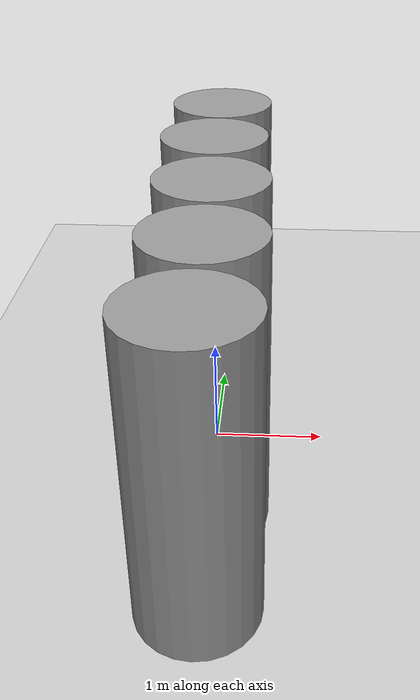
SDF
<sdf version="1.7">
 <world name="default">
  <light name="sun" type="directional">
   <pose>0 0 10 0 -0 0</pose>
   <diffuse>0.8 0.8 0.8 1</diffuse>
   <specular>0.2 0.2 0.2 1</specular>
   <attenuation>
    <range>1000</range>
    <constant>0.9</constant>
    <linear>0.01</linear>
    <quadratic>0.001</quadratic>
   </attenuation>
   <direction>-0.5 0.1 -0.9</direction>
   <spot><inner_angle>0</inner_angle><outer_angle>0</outer_angle><falloff>0</falloff></spot>
  </light>
  <model name="ground_plane">
   <static>1</static>
   <link name="link">
    <collision name="collision">
     <geometry><plane><normal>0 0 1</normal><size>100 100</size></plane></geometry>
     <surface>
      <contact><collide_bitmask>65535</collide_bitmask></contact>
      <friction><ode><mu>100</mu><mu2>50</mu2></ode></friction>
     </surface>
    </collision>
    <visual name="visual">
     <cast_shadows>0</cast_shadows>
     <geometry><plane><normal>0 0 1</normal><size>100 100</size></plane></geometry>
     <material>
      <script><uri>file://media/materials/scripts/gazebo.material</uri><name>Gazebo/Grey</name></script>
     </material>
    </visual>
   </link>
  </model>
  <gravity>0 0 -9.8</gravity>
  <magnetic_field>6e-06 2.3e-05 -4.2e-05</magnetic_field>
  <atmosphere type="adiabatic"/>
  <physics type="ode">
   <max_step_size>0.001</max_step_size>
   <real_time_factor>1</real_time_factor>
   <real_time_update_rate>1000</real_time_update_rate>
  </physics>
  <scene><ambient>0.4 0.4 0.4 1</ambient><background>0.7 0.7 0.7 1</background><shadows>1</shadows></scene>
  <spherical_coordinates>
   <surface_model>EARTH_WGS84</surface_model>
   <latitude_deg>0</latitude_deg>
   <longitude_deg>0</longitude_deg>
   <elevation>0</elevation>
   <heading_deg>0</heading_deg>
  </spherical_coordinates>
  <model name="unit_cylinder">
   <pose>2e-06 2e-06 1.32244 0 0 -3e-06</pose>
   <link name="link">
    <inertial>
     <mass>1</mass>
     <inertia><ixx>0.145833</ixx><ixy>0</ixy><ixz>0</ixz><iyy>0.145833</iyy><iyz>0</iyz><izz>0.125</izz></inertia>
    </inertial>
    <collision name="collision">
     <geometry><cylinder><radius>0.499999</radius><length>2.64489</length></cylinder></geometry>
    </collision>
    <visual name="visual">
     <geometry><cylinder><radius>0.499999</radius><length>2.64489</length></cylinder></geometry>
     <material>
      <script><name>Gazebo/Grey</name><uri>file://media/materials/scripts/gazebo.material</uri></script>
     </material>
    </visual>
   </link>
  </model>
  <model name="unit_cylinder_clone">
   <pose>-0.061255 1.03843 1.32244 -0 -0 -0</pose>
   <link name="link">
    <inertial>
     <mass>1</mass>
     <inertia><ixx>0.145833</ixx><ixy>0</ixy><ixz>0</ixz><iyy>0.145833</iyy><iyz>0</iyz><izz>0.125</izz></inertia>
    </inertial>
    <collision name="collision">
     <geometry><cylinder><radius>0.499999</radius><length>2.64489</length></cylinder></geometry>
    </collision>
    <visual name="visual">
     <geometry><cylinder><radius>0.499999</radius><length>2.64489</length></cylinder></geometry>
     <material>
      <script><name>Gazebo/Grey</name><uri>file://media/materials/scripts/gazebo.material</uri></script>
     </material>
    </visual>
   </link>
  </model>
  <model name="unit_cylinder_clone_0">
   <pose>0.026296 -1.03709 1.32244 0 -0 0</pose>
   <link name="link">
    <inertial>
     <mass>1</mass>
     <inertia><ixx>0.145833</ixx><ixy>0</ixy><ixz>0</ixz><iyy>0.145833</iyy><iyz>0</iyz><izz>0.125</izz></inertia>
    </inertial>
    <collision name="collision">
     <geometry><cylinder><radius>0.499999</radius><length>2.64489</length></cylinder></geometry>
    </collision>
    <visual name="visual">
     <geometry><cylinder><radius>0.499999</radius><length>2.64489</length></cylinder></geometry>
     <material>
      <script><name>Gazebo/Grey</name><uri>file://media/materials/scripts/gazebo.material</uri></script>
     </material>
    </visual>
   </link>
  </model>
  <model name="unit_cylinder_clone_1">
   <pose>0.024858 -2.09169 1.32244 0 -0 0</pose>
   <link name="link">
    <inertial>
     <mass>1</mass>
     <inertia><ixx>0.145833</ixx><ixy>0</ixy><ixz>0</ixz><iyy>0.145833</iyy><iyz>0</iyz><izz>0.125</izz></inertia>
    </inertial>
    <collision name="collision">
     <geometry><cylinder><radius>0.499999</radius><length>2.64489</length></cylinder></geometry>
    </collision>
    <visual name="visual">
     <geometry><cylinder><radius>0.499999</radius><length>2.64489</length></cylinder></geometry>
     <material>
      <script><name>Gazebo/Grey</name><uri>file://media/materials/scripts/gazebo.material</uri></script>
     </material>
    </visual>
   </link>
  </model>
  <model name="unit_cylinder_clone_2">
   <pose>-0.063028 2.04419 1.32244 0 -0 0</pose>
   <link name="link">
    <inertial>
     <mass>1</mass>
     <inertia><ixx>0.145833</ixx><ixy>0</ixy><ixz>0</ixz><iyy>0.145833</iyy><iyz>0</iyz><izz>0.125</izz></inertia>
    </inertial>
    <collision name="collision">
     <geometry><cylinder><radius>0.499999</radius><length>2.64489</length></cylinder></geometry>
    </collision>
    <visual name="visual">
     <geometry><cylinder><radius>0.499999</radius><length>2.64489</length></cylinder></geometry>
     <material>
      <script><name>Gazebo/Grey</name><uri>file://media/materials/scripts/gazebo.material</uri></script>
     </material>
    </visual>
   </link>
  </model>
 </world>
</sdf>
